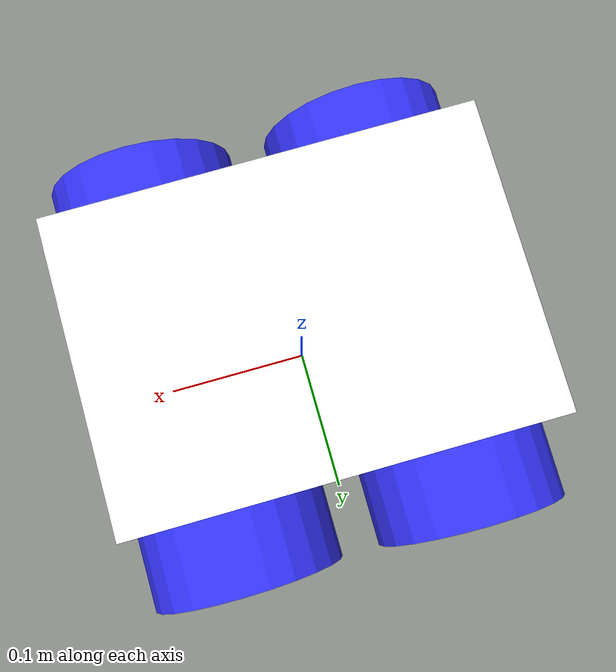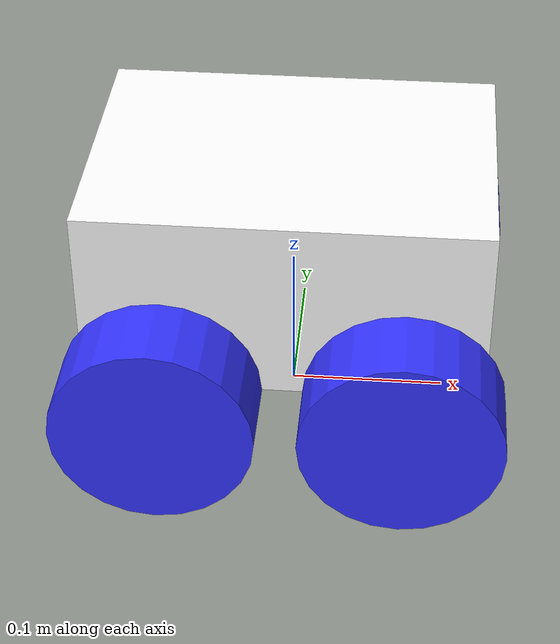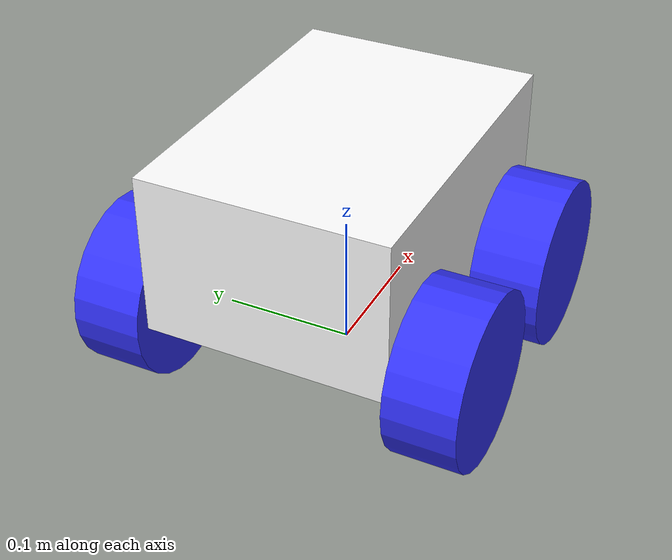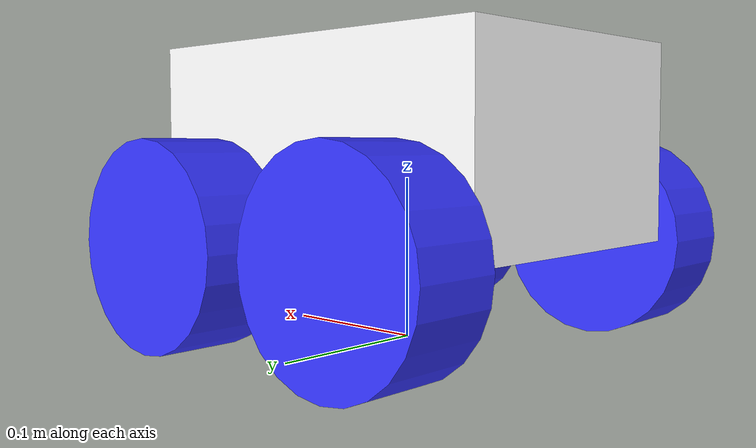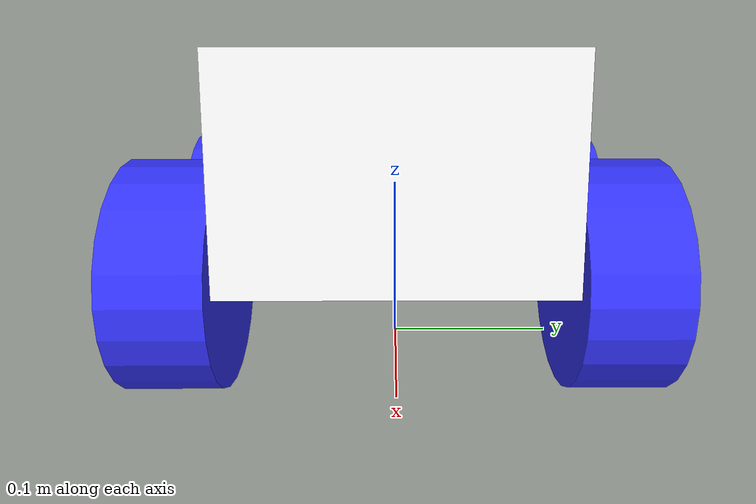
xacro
<?xml version="1.0"?>
<robot xmlns:xacro="http://www.ros.org/wiki/xacro">

    <xacro:include filename="inertial_macros.xacro" />

    <material name="white">
        <color rgba="1 1 1 1" />
    </material>

    <material name="orange">
        <color rgba="1 0.3 0.1 1" />
    </material>

    <material name="blue">
        <color rgba="0.2 0.2 1 1" />
    </material>

    <material name="black">
        <color rgba="0 0 0 1" />
    </material>

    <!--BASE
    FOOTPRINT-->
    <link name="base_footprint">
    </link>

    <!--BASE
    LINK-->
    <joint name="base_joint" type="fixed">
        <parent link="base_footprint" />
        <child link="base_link" />
        <origin xyz="0 0 0.0625" />
    </joint>

    <link name="base_link">
        <visual>
            <origin xyz="0 0.0 0.06" />
            <geometry>
                <box size="0.25 0.18 0.12" />
            </geometry>
            <material name="white" />
        </visual>
        <collision>
            <origin xyz="0 0.0 0.06" />
            <geometry>
                <box size="0 0.18 0.12" />
            </geometry>
        </collision>
        <xacro:inertial_box mass="0.5" x="0.3" y="0.3" z="0.15">
            <origin xyz="0 0.0 0.06" rpy="0 0 0" />
        </xacro:inertial_box>
    </link>

    <gazebo reference="base_link">
        <material>Gazebo/Purple</material>
    </gazebo>

    <!--LEFT
    WHEEL BACK LINK-->
    <joint name="left_wheel_back_joint" type="continuous">
        <parent link="base_link" />pe="continuo <child link="left_wheel_back_link" />
        <origin
            xyz="-0.075 0.116 0.0" rpy="-${pi/2} 0.0 0.0" />
        <axis xyz="0.0 0.0 1" />
    </joint>

    <link name="left_wheel_back_link">
        <visual>
            <geometry>
                <cylinder radius="0.0625" length="0.05132" />
            </geometry>
            <material name="blue" />
        </visual>
        <collision>
            <geometry>
                <cylinder radius="0.0625" length="0.05132" />
            </geometry>
        </collision>
        <xacro:inertial_cylinder mass="0.1" length="0.04" radius="0.05">
            <origin xyz="0 0 0" rpy="0 0 0" />
        </xacro:inertial_cylinder>
    </link>

    <gazebo reference="left_wheel_back_link">
        <material>Gazebo/Blue</material>
    </gazebo>

    <!--RIGHT
    WHEEL BACK LINK-->
    <joint name="right_wheel_back_joint" type="continuous">
        <parent link="base_link" />
        <child link="right_wheel_back_link" />
        <origin xyz="-0.075 -0.116 0.0" rpy="${pi/2} 0.0 0.0" />
        <axis xyz="0.0 0.0 -1" />
    </joint>

    <link name="right_wheel_back_link">
        <visual>
            <geometry>
                <cylinder radius="0.0625" length="0.05132" />
            </geometry>
            <material name="blue" />
        </visual>
        <collision>
            <geometry>
                <cylinder radius="0.0625" length="0.05132" />
            </geometry>
        </collision>
        <xacro:inertial_cylinder mass="0.1" length="0.04" radius="0.05">
            <origin xyz="0 0 0" rpy="0 0 0" />
        </xacro:inertial_cylinder>
    </link>

    <gazebo reference="right_wheel_back_link">
        <material>Gazebo/Blue</material>

    </gazebo>

    <!--LEFT
    WHEEL FOWARD LINK-->
    <joint name="left_wheel_foward_joint" type="continuous">
        <parent link="base_link" />
        <child link="left_wheel_foward_link" />
        <origin xyz="0.075 0.116 0.0" rpy="-${pi/2} 0.0 0.0" />
        <axis xyz="0.0 0.0 1" />
    </joint>

    <link name="left_wheel_foward_link">
        <visual>
            <geometry>
                <cylinder radius="0.0625" length="0.05132" />
            </geometry>
            <material name="blue" />
        </visual>
        <collision>
            <geometry>
                <cylinder radius="0.0625" length="0.05132" />
            </geometry>
        </collision>
        <xacro:inertial_cylinder mass="0.1" length="0.04" radius="0.05">
            <origin xyz="0 0 0" rpy="0 0 0" />
        </xacro:inertial_cylinder>
    </link>

    <gazebo reference="left_wheel_foward_link">
        <material>Gazebo/Blue</material>
    </gazebo>

    <!--RIGHT
    WHEEL FOWARD LINK-->
    <joint name="right_wheel_foward_joint" type="continuous">
        <parent link="base_link" />
        <child link="right_wheel_foward_link" />
        <origin xyz="0.075 -0.116 0.0" rpy="${pi/2} 0.0 0.0" />
        <axis xyz="0.0 0.0 -1" />
    </joint>

    <link name="right_wheel_foward_link">
        <visual>
            <geometry>
                <cylinder radius="0.0625" length="0.05132" />
            </geometry>
            <material name="blue" />
        </visual>
        <collision>
            <geometry>
                <cylinder radius="0.0625" length="0.05132" />
            </geometry>
        </collision>
        <xacro:inertial_cylinder mass="0.1" length="0.04" radius="0.05">
            <origin xyz="0 0 0" rpy="0 0 0" />
        </xacro:inertial_cylinder>
    </link>

    <gazebo reference="right_wheel_foward_link">
        <material>Gazebo/Blue</material>
    </gazebo>

</robot>
